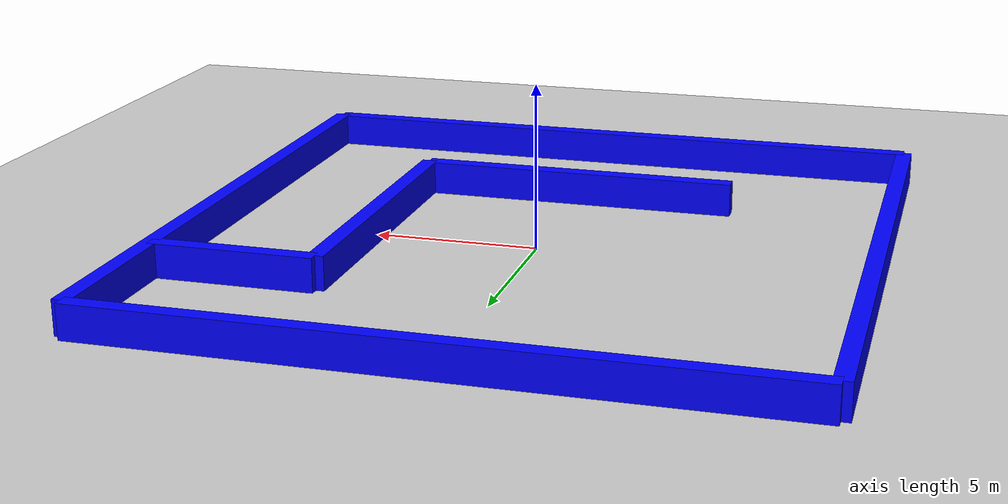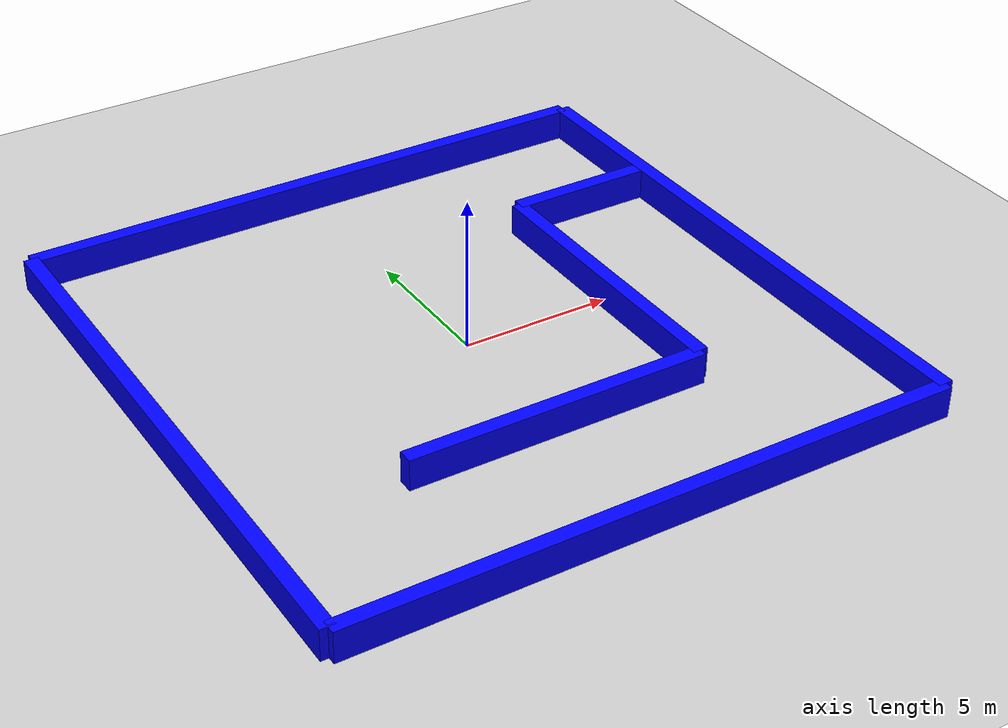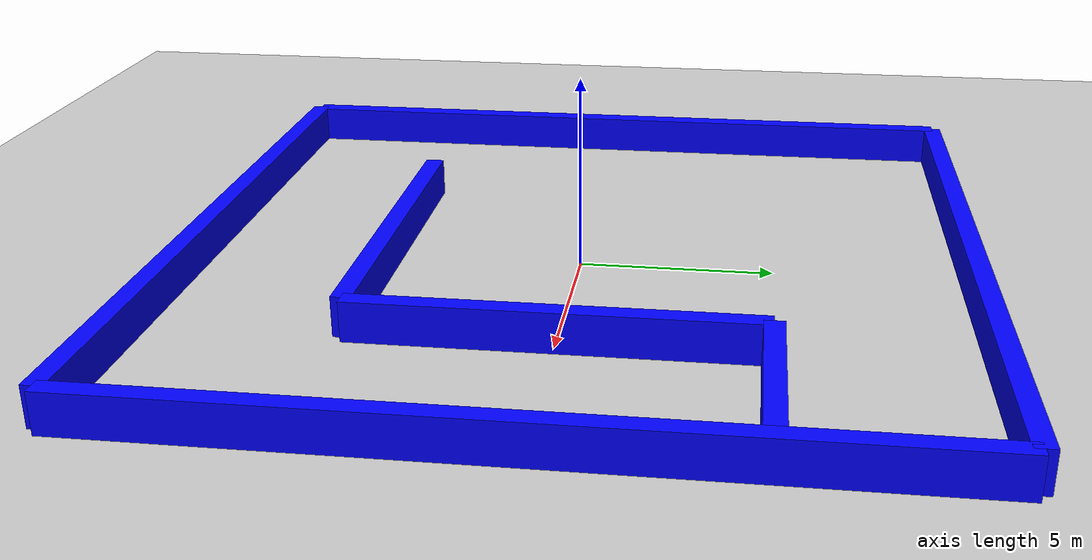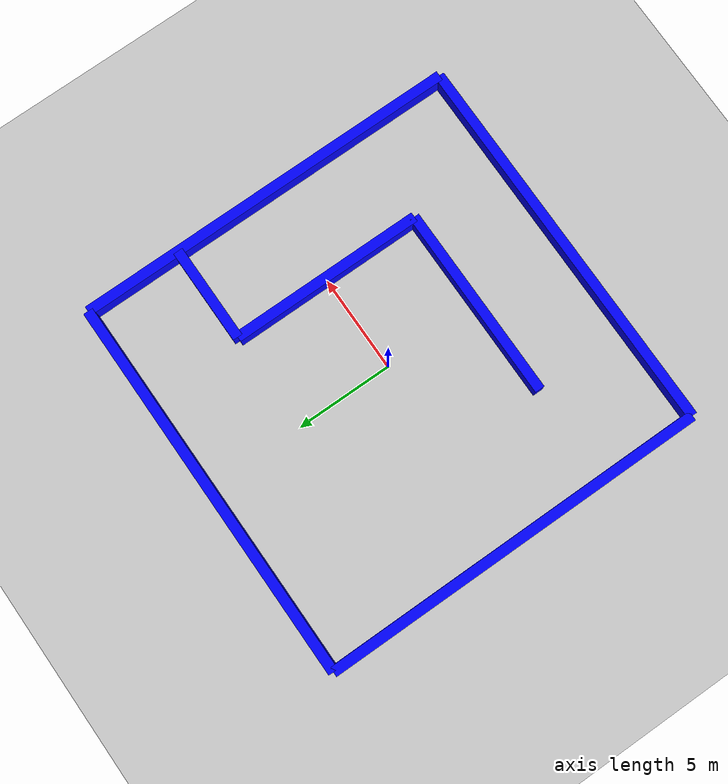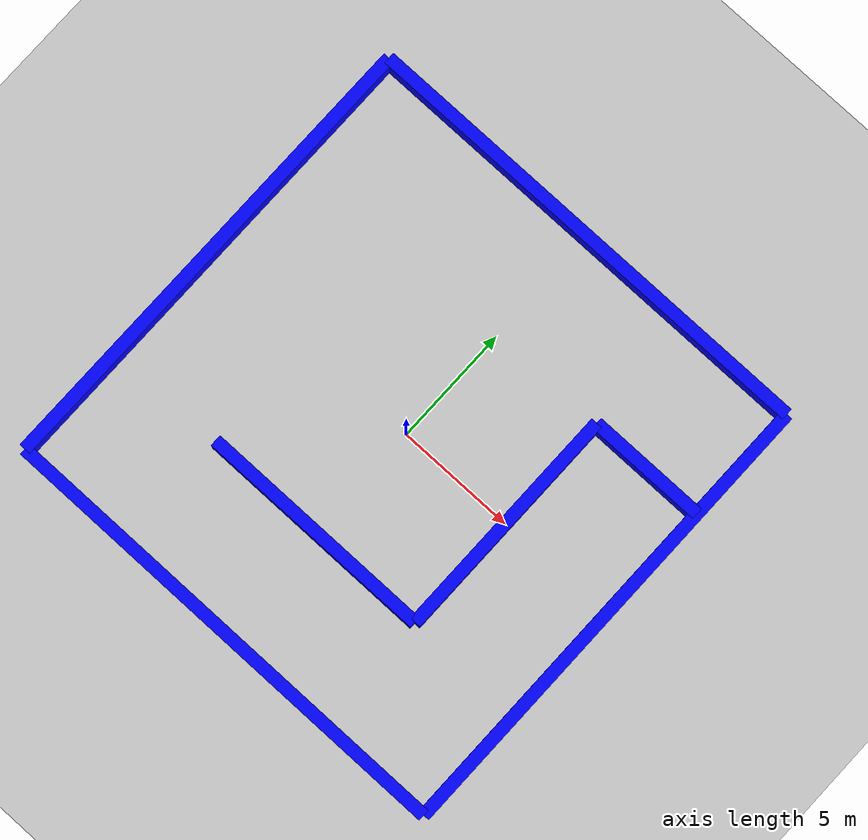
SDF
<sdf version="1.10">
 <world name="walled_world">
  <light type="directional" name="sun">
   <pose>0 0 10 0 0 0</pose>
   <diffuse>0.8 0.8 0.8 1</diffuse>
   <specular>0.2 0.2 0.2 1</specular>
   <attenuation>
    <range>1000</range>
    <constant>0.9</constant>
    <linear>0.01</linear>
    <quadratic>0.001</quadratic>
   </attenuation>
   <direction>-0.5 0.1 -0.9</direction>
  </light>
  <model name="ground_plane">
   <static>true</static>
   <link name="link">
    <collision name="collision"><geometry><plane><normal>0 0 1</normal></plane></geometry></collision>
    <visual name="visual">
     <geometry><plane><normal>0 0 1</normal><size>100 100</size></plane></geometry>
     <material>
      <ambient>0.8 0.8 0.8 1</ambient>
      <diffuse>0.8 0.8 0.8 1</diffuse>
      <specular>0.8 0.8 0.8 1</specular>
     </material>
    </visual>
   </link>
  </model>
  <model name="wall_1">
   <static>true</static>
   <pose>10 0 0 0 0 0</pose>
   <link name="box">
    <visual name="visual">
     <geometry><box><size>0.5 20.0 2.0</size></box></geometry>
     <material>
      <ambient>0.0 0.0 1.0 1</ambient>
      <diffuse>0.0 0.0 1.0 1</diffuse>
      <specular>0.0 0.0 1.0 1</specular>
     </material>
    </visual>
    <collision name="collision"><geometry><box><size>0.5 20.0 2.0</size></box></geometry></collision>
   </link>
  </model>
  <model name="wall_2">
   <static>true</static>
   <pose>0 10 0 0 0 1.571</pose>
   <link name="box">
    <visual name="visual">
     <geometry><box><size>0.5 20.0 2.0</size></box></geometry>
     <material>
      <ambient>0.0 0.0 1.0 1</ambient>
      <diffuse>0.0 0.0 1.0 1</diffuse>
      <specular>0.0 0.0 1.0 1</specular>
     </material>
    </visual>
    <collision name="collision"><geometry><box><size>0.5 20.0 2.0</size></box></geometry></collision>
   </link>
  </model>
  <model name="wall_3">
   <static>true</static>
   <pose>0 -10 0 0 0 1.571</pose>
   <link name="box">
    <visual name="visual">
     <geometry><box><size>0.5 20.0 2.0</size></box></geometry>
     <material>
      <ambient>0.0 0.0 1.0 1</ambient>
      <diffuse>0.0 0.0 1.0 1</diffuse>
      <specular>0.0 0.0 1.0 1</specular>
     </material>
    </visual>
    <collision name="collision"><geometry><box><size>0.5 20.0 2.0</size></box></geometry></collision>
   </link>
  </model>
  <model name="wall_4">
   <static>true</static>
   <pose>-10 0 0 0 0 0</pose>
   <link name="box">
    <visual name="visual">
     <geometry><box><size>0.5 20.0 2.0</size></box></geometry>
     <material>
      <ambient>0.0 0.0 1.0 1</ambient>
      <diffuse>0.0 0.0 1.0 1</diffuse>
      <specular>0.0 0.0 1.0 1</specular>
     </material>
    </visual>
    <collision name="collision"><geometry><box><size>0.5 20.0 2.0</size></box></geometry></collision>
   </link>
  </model>
  <model name="wall_5">
   <static>true</static>
   <pose>5 0 0 0 0 0</pose>
   <link name="box">
    <visual name="visual">
     <geometry><box><size>0.5 10.0 2.0</size></box></geometry>
     <material>
      <ambient>0.0 0.0 1.0 1</ambient>
      <diffuse>0.0 0.0 1.0 1</diffuse>
      <specular>0.0 0.0 1.0 1</specular>
     </material>
    </visual>
    <collision name="collision"><geometry><box><size>0.5 10.0 2.0</size></box></geometry></collision>
   </link>
  </model>
  <model name="wall_6">
   <static>true</static>
   <pose>7.5 5 0 0 0 1.571</pose>
   <link name="box">
    <visual name="visual">
     <geometry><box><size>0.5 5 2.0</size></box></geometry>
     <material>
      <ambient>0.0 0.0 1.0 1</ambient>
      <diffuse>0.0 0.0 1.0 1</diffuse>
      <specular>0.0 0.0 1.0 1</specular>
     </material>
    </visual>
    <collision name="collision"><geometry><box><size>0.5 5 2.0</size></box></geometry></collision>
   </link>
  </model>
  <model name="wall_7">
   <static>true</static>
   <pose>0 -5 0 0 0 1.571</pose>
   <link name="box">
    <visual name="visual">
     <geometry><box><size>0.5 10 2.0</size></box></geometry>
     <material>
      <ambient>0.0 0.0 1.0 1</ambient>
      <diffuse>0.0 0.0 1.0 1</diffuse>
      <specular>0.0 0.0 1.0 1</specular>
     </material>
    </visual>
    <collision name="collision"><geometry><box><size>0.5 10.0 2.0</size></box></geometry></collision>
   </link>
  </model>
 </world>
</sdf>
